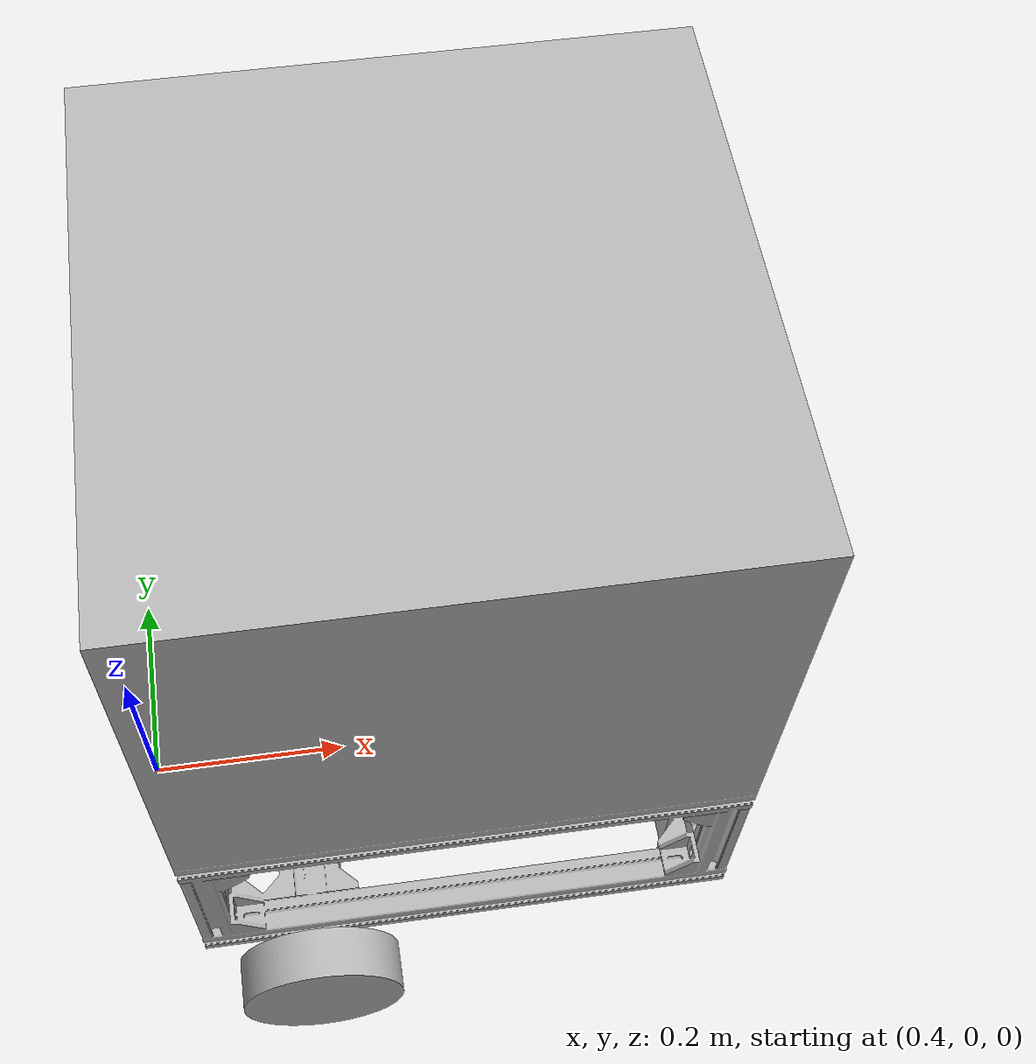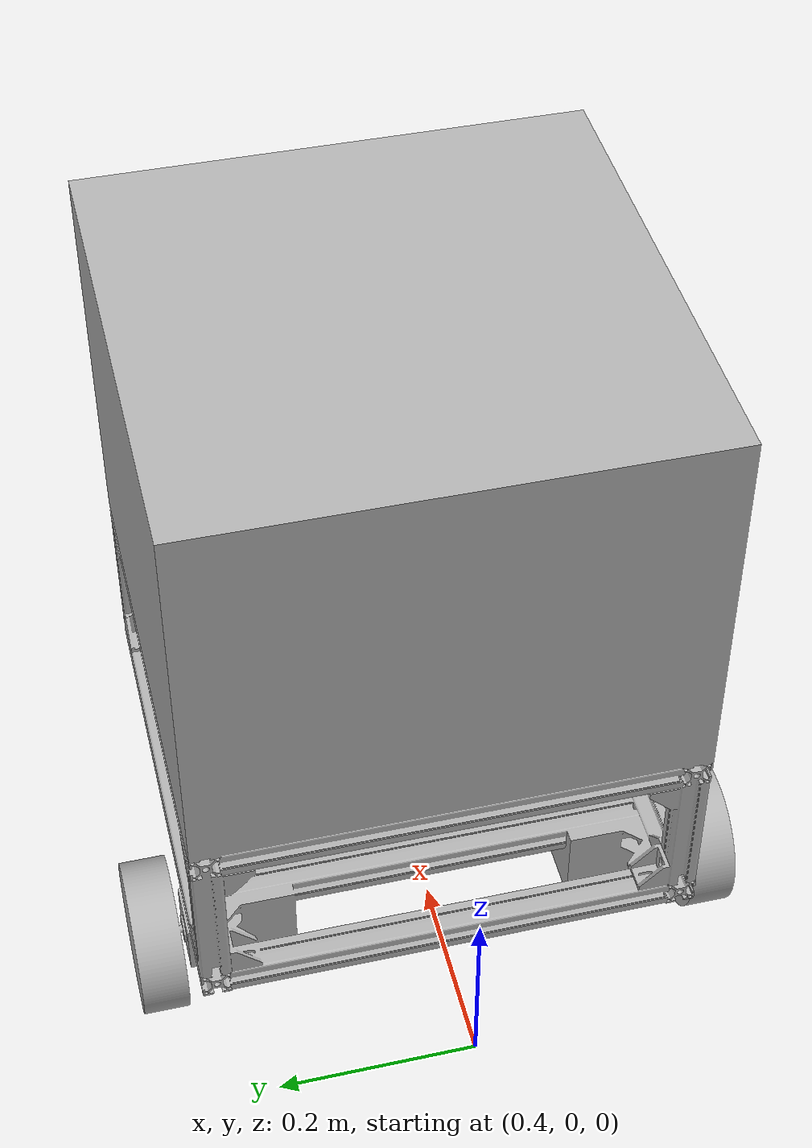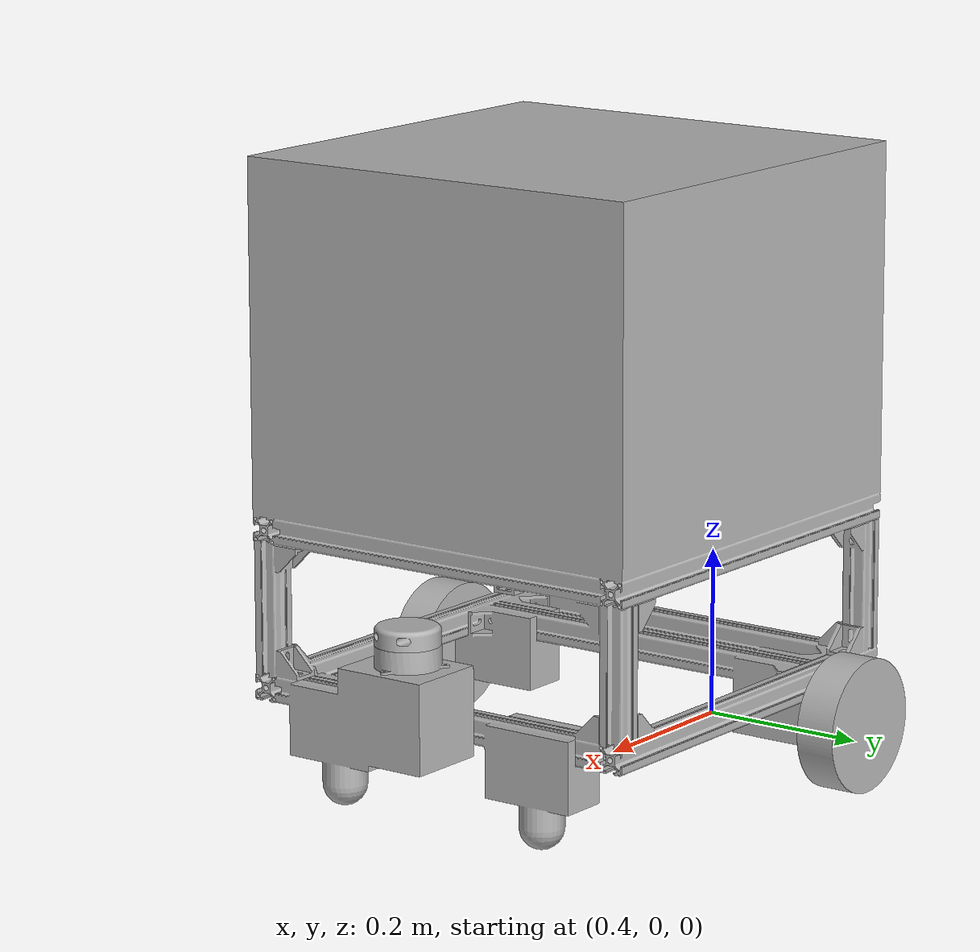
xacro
<?xml version="1.0" ?>
<robot name="test_robotXZ" xmlns:xacro="http://www.ros.org/wiki/xacro">

<xacro:include filename="$(find test_robotXZ_description)/urdf/materials.xacro" />
<xacro:include filename="$(find test_robotXZ_description)/urdf/test_robotXZ.trans" />
<xacro:include filename="$(find test_robotXZ_description)/urdf/test_robotXZ.gazebo" />
<link name="base_link">
  <inertial>
    <origin xyz="0.7056572665672693 0.011499999976746635 0.4977988600115335" rpy="0 0 0"/>
    <mass value="822.2973714080007"/>
    <inertia ixx="32.939816" iyy="33.895689" izz="35.563544" ixy="0.0" iyz="-0.0" ixz="1.257062"/>
  </inertial>
  <visual>
    <origin xyz="0 0 0" rpy="0 0 0"/>
    <geometry>
      <mesh filename="package://test_robotXZ_description/meshes/base_link.stl" scale="0.001 0.001 0.001"/>
    </geometry>
    <material name="silver"/>
  </visual>
  <collision>
    <origin xyz="0 0 0" rpy="0 0 0"/>
    <geometry>
      <mesh filename="package://test_robotXZ_description/meshes/base_link.stl" scale="0.001 0.001 0.001"/>
    </geometry>
  </collision>
</link>

<link name="left_wheel_1">
  <inertial>
    <origin xyz="4.440892098500626e-16 0.028990658411337356 2.7755575615628914e-17" rpy="0 0 0"/>
    <mass value="6.589362049499588"/>
    <inertia ixx="0.010725" iyy="0.019124" izz="0.010725" ixy="0.0" iyz="0.0" ixz="0.0"/>
  </inertial>
  <visual>
    <origin xyz="-0.5565 -0.266 -0.0762" rpy="0 0 0"/>
    <geometry>
      <mesh filename="package://test_robotXZ_description/meshes/left_wheel_1.stl" scale="0.001 0.001 0.001"/>
    </geometry>
    <material name="silver"/>
  </visual>
  <collision>
    <origin xyz="-0.5565 -0.266 -0.0762" rpy="0 0 0"/>
    <geometry>
      <mesh filename="package://test_robotXZ_description/meshes/left_wheel_1.stl" scale="0.001 0.001 0.001"/>
    </geometry>
  </collision>
</link>

<link name="right_wheel_1">
  <inertial>
    <origin xyz="-1.1102230246251565e-15 -0.02899065841133691 0.0" rpy="0 0 0"/>
    <mass value="6.589362049499577"/>
    <inertia ixx="0.010725" iyy="0.019124" izz="0.010725" ixy="0.0" iyz="0.0" ixz="0.0"/>
  </inertial>
  <visual>
    <origin xyz="-0.5565 0.243 -0.0762" rpy="0 0 0"/>
    <geometry>
      <mesh filename="package://test_robotXZ_description/meshes/right_wheel_1.stl" scale="0.001 0.001 0.001"/>
    </geometry>
    <material name="silver"/>
  </visual>
  <collision>
    <origin xyz="-0.5565 0.243 -0.0762" rpy="0 0 0"/>
    <geometry>
      <mesh filename="package://test_robotXZ_description/meshes/right_wheel_1.stl" scale="0.001 0.001 0.001"/>
    </geometry>
  </collision>
</link>

<link name="laser_frame">
  <inertial>
    <origin xyz="-0.0010196062196645705 -0.0002760538866155675 0.010248297454416688" rpy="0 0 0"/>
    <mass value="0.6266154807653417"/>
    <inertia ixx="0.000226" iyy="0.000225" izz="0.000403" ixy="3e-06" iyz="0.0" ixz="1e-06"/>
  </inertial>
  <visual>
    <origin xyz="-0.994494 -0.0115 -0.217999" rpy="0 0 0"/>
    <geometry>
      <mesh filename="package://test_robotXZ_description/meshes/laser_frame.stl" scale="0.001 0.001 0.001"/>
    </geometry>
    <material name="silver"/>
  </visual>
  <collision>
    <origin xyz="-0.994494 -0.0115 -0.217999" rpy="0 0 0"/>
    <geometry>
      <mesh filename="package://test_robotXZ_description/meshes/laser_frame.stl" scale="0.001 0.001 0.001"/>
    </geometry>
  </collision>
</link>

<joint name="Revolute 1" type="continuous">
  <origin xyz="0.5565 0.266 0.0762" rpy="0 0 0"/>
  <parent link="base_link"/>
  <child link="left_wheel_1"/>
  <axis xyz="0.0 1.0 0.0"/>
</joint>

<joint name="Revolute 2" type="continuous">
  <origin xyz="0.5565 -0.243 0.0762" rpy="0 0 0"/>
  <parent link="base_link"/>
  <child link="right_wheel_1"/>
  <axis xyz="0.0 -1.0 0.0"/>
</joint>

<joint name="Rigid 3" type="fixed">
  <origin xyz="0.994494 0.0115 0.217999" rpy="0 0 0"/>
  <parent link="base_link"/>
  <child link="laser_frame"/>
</joint>

</robot>

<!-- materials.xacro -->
<robot name="test_robotXZ" xmlns:xacro="http://www.ros.org/wiki/xacro" >

<material name="silver">
  <color rgba="0.700 0.700 0.700 1.000"/>
</material>

</robot>

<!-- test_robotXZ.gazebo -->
<robot name="test_robotXZ" xmlns:xacro="http://www.ros.org/wiki/xacro" >

<xacro:property name="body_color" value="Gazebo/Silver" />

<gazebo>
  <plugin name="control" filename="libgazebo_ros_control.so"/>
</gazebo>
<gazebo reference="base_link">
  <material>${body_color}</material>
  <mu1>0.2</mu1>
  <mu2>0.2</mu2>
  <selfCollide>true</selfCollide>
  <gravity>true</gravity>
</gazebo>

<gazebo reference="left_wheel_1">
  <material>${body_color}</material>
  <mu1>0.2</mu1>
  <mu2>0.2</mu2>
  <selfCollide>true</selfCollide>
</gazebo>

<gazebo reference="right_wheel_1">
  <material>${body_color}</material>
  <mu1>0.2</mu1>
  <mu2>0.2</mu2>
  <selfCollide>true</selfCollide>
</gazebo>

<gazebo reference="laser_frame">
  <material>${body_color}</material>
  <mu1>0.2</mu1>
  <mu2>0.2</mu2>
  <selfCollide>true</selfCollide>
</gazebo>

</robot>
